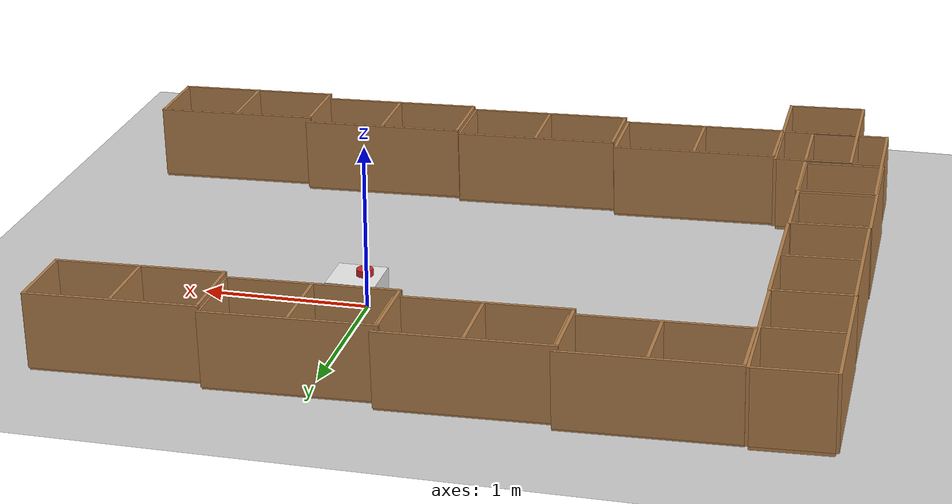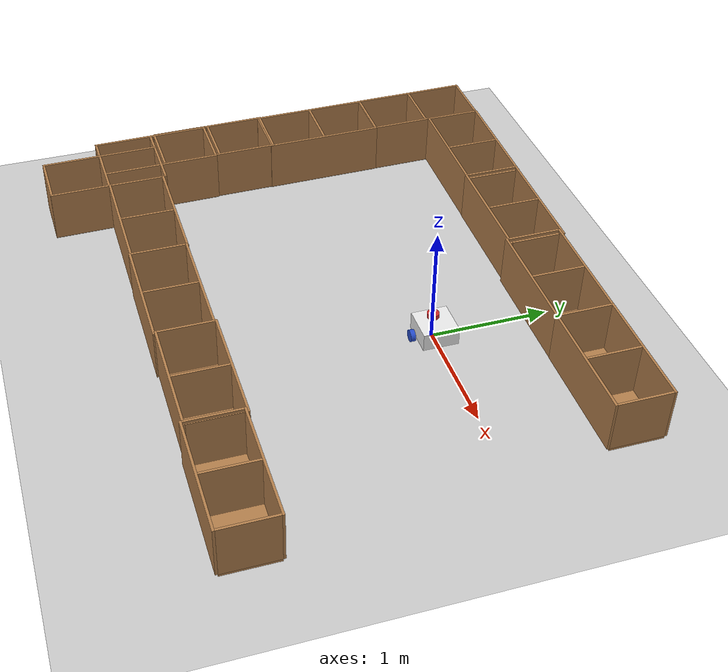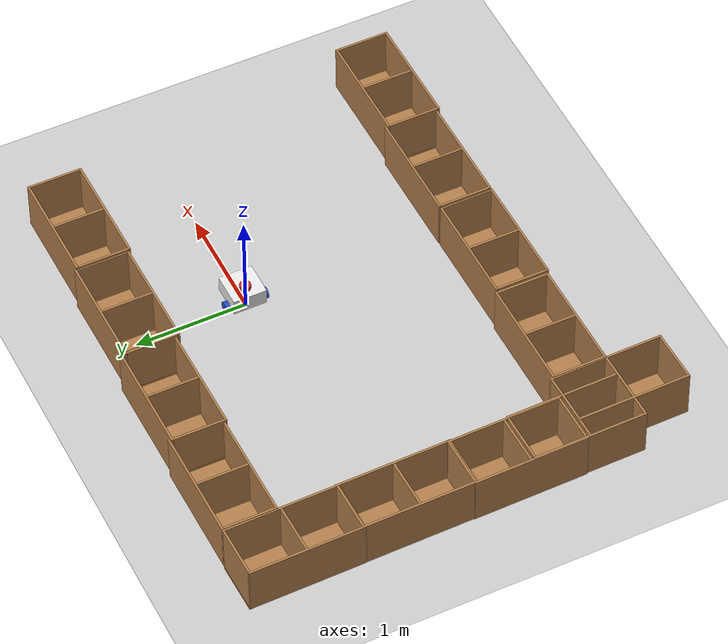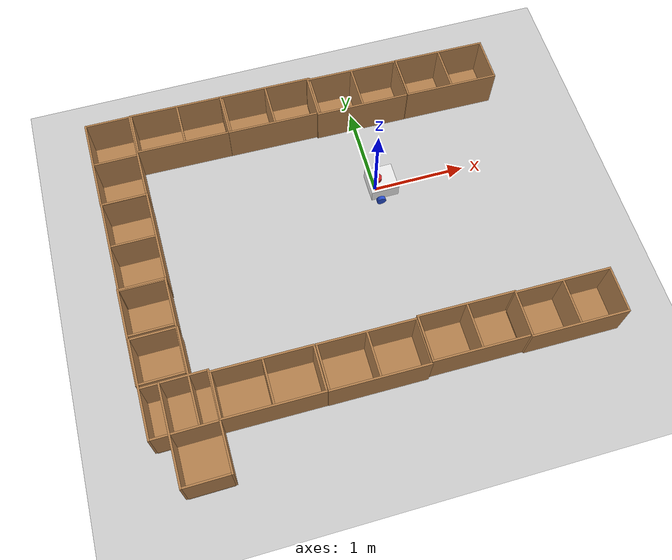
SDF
<sdf version="1.7">
 <world name="default">
  <model name="ground_plane">
   <static>1</static>
   <link name="link">
    <collision name="collision">
     <geometry><plane><normal>0 0 1</normal><size>100 100</size></plane></geometry>
     <surface><friction><ode><mu>100</mu><mu2>50</mu2></ode></friction></surface>
    </collision>
    <visual name="visual">
     <cast_shadows>0</cast_shadows>
     <geometry><plane><normal>0 0 1</normal><size>100 100</size></plane></geometry>
     <material>
      <script><uri>file://media/materials/scripts/gazebo.material</uri><name>Gazebo/Grey</name></script>
     </material>
    </visual>
   </link>
  </model>
  <model name="cabinet_2">
   <static>1</static>
   <link name="cabinet_bottom_plate">
    <inertial>
     <pose>0 0 -1 0 -0 0</pose>
     <inertia><ixx>2.05</ixx><ixy>0</ixy><ixz>0</ixz><iyy>2.05</iyy><iyz>0</iyz><izz>2.05</izz></inertia>
     <mass>25</mass>
    </inertial>
    <collision name="cabinet_bottom_plate_geom">
     <pose>0 0 0.01 0 -0 0</pose>
     <geometry><box><size>0.45 0.45 0.02</size></box></geometry>
    </collision>
    <visual name="cabinet_bottom_plate_geom_visual">
     <pose>0 0 0.01 0 -0 0</pose>
     <geometry><box><size>0.45 0.45 0.02</size></box></geometry>
     <material>
      <script><uri>file://media/materials/scripts/gazebo.material</uri><name>Gazebo/Wood</name></script>
     </material>
    </visual>
    <collision name="cabinet_bottom_plate_geom_cabinet_back_plate">
     <pose>0.235 0 0.51 0 -0 0</pose>
     <geometry><box><size>0.02 0.45 1.02</size></box></geometry>
    </collision>
    <visual name="cabinet_bottom_plate_geom_cabinet_back_plate_visual">
     <pose>0.235 0 0.51 0 -0 0</pose>
     <geometry><box><size>0.02 0.45 1.02</size></box></geometry>
     <material>
      <script><uri>file://media/materials/scripts/gazebo.material</uri><name>Gazebo/Wood</name></script>
     </material>
    </visual>
    <collision name="cabinet_bottom_plate_geom_cabinet_left_plate">
     <pose>0 0.235 0.51 0 -0 0</pose>
     <geometry><box><size>0.45 0.02 1.02</size></box></geometry>
    </collision>
    <visual name="cabinet_bottom_plate_geom_cabinet_left_plate_visual">
     <pose>0 0.235 0.51 0 -0 0</pose>
     <geometry><box><size>0.45 0.02 1.02</size></box></geometry>
     <material>
      <script><uri>file://media/materials/scripts/gazebo.material</uri><name>Gazebo/Wood</name></script>
     </material>
    </visual>
    <collision name="cabinet_bottom_plate_geom_cabinet_middle_plate">
     <pose>0 0 0.51 0 -0 0</pose>
     <geometry><box><size>0.45 0.45 0.02</size></box></geometry>
    </collision>
    <visual name="cabinet_bottom_plate_geom_cabinet_middle_plate_visual">
     <pose>0 0 0.51 0 -0 0</pose>
     <geometry><box><size>0.45 0.45 0.02</size></box></geometry>
     <material>
      <script><uri>file://media/materials/scripts/gazebo.material</uri><name>Gazebo/Wood</name></script>
     </material>
    </visual>
    <collision name="cabinet_bottom_plate_geom_cabinet_right_plate">
     <pose>0 -0.235 0.51 0 -0 0</pose>
     <geometry><box><size>0.45 0.02 1.02</size></box></geometry>
    </collision>
    <visual name="cabinet_bottom_plate_geom_cabinet_right_plate_visual">
     <pose>0 -0.235 0.51 0 -0 0</pose>
     <geometry><box><size>0.45 0.02 1.02</size></box></geometry>
     <material>
      <script><uri>file://media/materials/scripts/gazebo.material</uri><name>Gazebo/Wood</name></script>
     </material>
    </visual>
    <collision name="cabinet_bottom_plate_geom_cabinet_top_plate">
     <pose>0 0 1.01 0 -0 0</pose>
     <geometry><box><size>0.45 0.45 0.02</size></box></geometry>
    </collision>
    <visual name="cabinet_bottom_plate_geom_cabinet_top_plate_visual">
     <pose>0 0 1.01 0 -0 0</pose>
     <geometry><box><size>0.45 0.45 0.02</size></box></geometry>
     <material>
      <script><uri>file://media/materials/scripts/gazebo.material</uri><name>Gazebo/Wood</name></script>
     </material>
    </visual>
   </link>
   <pose>-0.435467 1.028 0.270844 3.14159 1.54735 3.14159</pose>
  </model>
  <model name="my_bot">
   <link name="base_link">
    <inertial>
     <pose>0.055714 0 0.078571 0 -0 0</pose>
     <mass>0.7</mass>
     <inertia>
      <ixx>0.0064169</ixx>
      <ixy>0</ixy>
      <ixz>0.00118929</ixz>
      <iyy>0.00745405</iyy>
      <iyz>0</iyz>
      <izz>0.00876214</izz>
     </inertia>
    </inertial>
    <collision name="base_link_fixed_joint_lump__chassis_collision">
     <pose>0.05 0 0.075 0 -0 0</pose>
     <geometry><box><size>0.3 0.3 0.15</size></box></geometry>
    </collision>
    <collision name="base_link_fixed_joint_lump__caster_wheel_collision_1">
     <pose>0.14 0 0 0 -0 0</pose>
     <geometry><sphere><radius>0.05</radius></sphere></geometry>
     <surface><friction><ode><mu>0.001</mu><mu2>0.001</mu2></ode></friction></surface>
    </collision>
    <collision name="base_link_fixed_joint_lump__laser_frame_collision_2">
     <pose>0 0 0.175 0 -0 0</pose>
     <geometry><cylinder><length>0.04</length><radius>0.05</radius></cylinder></geometry>
    </collision>
    <visual name="base_link_fixed_joint_lump__chassis_visual">
     <pose>0.05 0 0.075 0 -0 0</pose>
     <geometry><box><size>0.3 0.3 0.15</size></box></geometry>
     <material>
      <script><name>Gazebo/White</name><uri>file://media/materials/scripts/gazebo.material</uri></script>
     </material>
    </visual>
    <visual name="base_link_fixed_joint_lump__caster_wheel_visual_1">
     <pose>0.14 0 0 0 -0 0</pose>
     <geometry><sphere><radius>0.05</radius></sphere></geometry>
     <material>
      <script><name>Gazebo/Black</name><uri>file://media/materials/scripts/gazebo.material</uri></script>
     </material>
    </visual>
    <visual name="base_link_fixed_joint_lump__laser_frame_visual_2">
     <pose>0 0 0.175 0 -0 0</pose>
     <geometry><cylinder><length>0.04</length><radius>0.05</radius></cylinder></geometry>
     <material>
      <script><name>Gazebo/Red</name><uri>file://media/materials/scripts/gazebo.material</uri></script>
     </material>
    </visual>
    <sensor name="laser" type="ray">
     <visualize>1</visualize>
     <update_rate>10</update_rate>
     <ray>
      <scan>
       <horizontal>
        <samples>360</samples>
        <min_angle>-3.14</min_angle>
        <max_angle>3.14</max_angle>
        <resolution>1</resolution>
       </horizontal>
       <vertical><samples>1</samples><min_angle>0</min_angle><max_angle>0</max_angle></vertical>
      </scan>
      <range><min>0.3</min><max>12</max></range>
     </ray>
     <plugin name="laser_controller" filename="libgazebo_ros_ray_sensor.so">
      <ros><argument>~/out:=scan</argument></ros>
      <output_type>sensor_msgs/LaserScan</output_type>
      <frame_name>laser_frame</frame_name>
     </plugin>
     <pose>0 0 0.175 0 -0 0</pose>
    </sensor>
   </link>
   <joint name="left_wheel_joint" type="revolute">
    <pose relative_to="base_link">0 0.175 0 -1.5708 0 0</pose>
    <parent>base_link</parent>
    <child>left_wheel</child>
    <axis>
     <xyz>0 0 1</xyz>
     <limit><lower>-1e+16</lower><upper>1e+16</upper></limit>
     <dynamics><spring_reference>0</spring_reference><spring_stiffness>0</spring_stiffness></dynamics>
    </axis>
   </joint>
   <link name="left_wheel">
    <pose relative_to="left_wheel_joint">0 0 0 0 -0 0</pose>
    <inertial>
     <mass>0.1</mass>
     <inertia>
      <ixx>7.58333e-05</ixx>
      <ixy>0</ixy>
      <ixz>0</ixz>
      <iyy>7.58333e-05</iyy>
      <iyz>0</iyz>
      <izz>0.000125</izz>
     </inertia>
    </inertial>
    <collision name="left_wheel_collision">
     <geometry><cylinder><length>0.04</length><radius>0.05</radius></cylinder></geometry>
    </collision>
    <visual name="left_wheel_visual">
     <geometry><cylinder><length>0.04</length><radius>0.05</radius></cylinder></geometry>
     <material>
      <script><name>Gazebo/Blue</name><uri>file://media/materials/scripts/gazebo.material</uri></script>
     </material>
    </visual>
   </link>
   <joint name="right_wheel_joint" type="revolute">
    <pose relative_to="base_link">0 -0.175 0 1.5708 -0 0</pose>
    <parent>base_link</parent>
    <child>right_wheel</child>
    <axis>
     <xyz>0 0 -1</xyz>
     <limit><lower>-1e+16</lower><upper>1e+16</upper></limit>
     <dynamics><spring_reference>0</spring_reference><spring_stiffness>0</spring_stiffness></dynamics>
    </axis>
   </joint>
   <link name="right_wheel">
    <pose relative_to="right_wheel_joint">0 0 0 0 -0 0</pose>
    <inertial>
     <mass>0.1</mass>
     <inertia>
      <ixx>7.58333e-05</ixx>
      <ixy>0</ixy>
      <ixz>0</ixz>
      <iyy>7.58333e-05</iyy>
      <iyz>0</iyz>
      <izz>0.000125</izz>
     </inertia>
    </inertial>
    <collision name="right_wheel_collision">
     <geometry><cylinder><length>0.04</length><radius>0.05</radius></cylinder></geometry>
    </collision>
    <visual name="right_wheel_visual">
     <geometry><cylinder><length>0.04</length><radius>0.05</radius></cylinder></geometry>
     <material>
      <script><name>Gazebo/Blue</name><uri>file://media/materials/scripts/gazebo.material</uri></script>
     </material>
    </visual>
   </link>
   <static>0</static>
   <plugin name="diff_drive" filename="libgazebo_ros_diff_drive.so">
    <left_joint>left_wheel_joint</left_joint>
    <right_joint>right_wheel_joint</right_joint>
    <wheel_separation>0.35</wheel_separation>
    <wheel_diameter>0.1</wheel_diameter>
    <max_wheel_torque>200</max_wheel_torque>
    <max_wheel_acceleration>10.0</max_wheel_acceleration>
    <odometry_frame>odom</odometry_frame>
    <robot_base_frame>base_link</robot_base_frame>
    <publish_odom>1</publish_odom>
    <publish_odom_tf>1</publish_odom_tf>
    <publish_wheel_tf>1</publish_wheel_tf>
   </plugin>
   <pose>0.010607 6.8e-05 0.05 0 1.2e-05 0.000277</pose>
  </model>
  <model name="cabinet_2_clone">
   <static>1</static>
   <link name="cabinet_bottom_plate">
    <inertial>
     <pose>0 0 -1 0 -0 0</pose>
     <inertia><ixx>2.05</ixx><ixy>0</ixy><ixz>0</ixz><iyy>2.05</iyy><iyz>0</iyz><izz>2.05</izz></inertia>
     <mass>25</mass>
    </inertial>
    <collision name="cabinet_bottom_plate_geom">
     <pose>0 0 0.01 0 -0 0</pose>
     <geometry><box><size>0.45 0.45 0.02</size></box></geometry>
    </collision>
    <visual name="cabinet_bottom_plate_geom_visual">
     <pose>0 0 0.01 0 -0 0</pose>
     <geometry><box><size>0.45 0.45 0.02</size></box></geometry>
     <material>
      <script><uri>file://media/materials/scripts/gazebo.material</uri><name>Gazebo/Wood</name></script>
     </material>
    </visual>
    <collision name="cabinet_bottom_plate_geom_cabinet_back_plate">
     <pose>0.235 0 0.51 0 -0 0</pose>
     <geometry><box><size>0.02 0.45 1.02</size></box></geometry>
    </collision>
    <visual name="cabinet_bottom_plate_geom_cabinet_back_plate_visual">
     <pose>0.235 0 0.51 0 -0 0</pose>
     <geometry><box><size>0.02 0.45 1.02</size></box></geometry>
     <material>
      <script><uri>file://media/materials/scripts/gazebo.material</uri><name>Gazebo/Wood</name></script>
     </material>
    </visual>
    <collision name="cabinet_bottom_plate_geom_cabinet_left_plate">
     <pose>0 0.235 0.51 0 -0 0</pose>
     <geometry><box><size>0.45 0.02 1.02</size></box></geometry>
    </collision>
    <visual name="cabinet_bottom_plate_geom_cabinet_left_plate_visual">
     <pose>0 0.235 0.51 0 -0 0</pose>
     <geometry><box><size>0.45 0.02 1.02</size></box></geometry>
     <material>
      <script><uri>file://media/materials/scripts/gazebo.material</uri><name>Gazebo/Wood</name></script>
     </material>
    </visual>
    <collision name="cabinet_bottom_plate_geom_cabinet_middle_plate">
     <pose>0 0 0.51 0 -0 0</pose>
     <geometry><box><size>0.45 0.45 0.02</size></box></geometry>
    </collision>
    <visual name="cabinet_bottom_plate_geom_cabinet_middle_plate_visual">
     <pose>0 0 0.51 0 -0 0</pose>
     <geometry><box><size>0.45 0.45 0.02</size></box></geometry>
     <material>
      <script><uri>file://media/materials/scripts/gazebo.material</uri><name>Gazebo/Wood</name></script>
     </material>
    </visual>
    <collision name="cabinet_bottom_plate_geom_cabinet_right_plate">
     <pose>0 -0.235 0.51 0 -0 0</pose>
     <geometry><box><size>0.45 0.02 1.02</size></box></geometry>
    </collision>
    <visual name="cabinet_bottom_plate_geom_cabinet_right_plate_visual">
     <pose>0 -0.235 0.51 0 -0 0</pose>
     <geometry><box><size>0.45 0.02 1.02</size></box></geometry>
     <material>
      <script><uri>file://media/materials/scripts/gazebo.material</uri><name>Gazebo/Wood</name></script>
     </material>
    </visual>
    <collision name="cabinet_bottom_plate_geom_cabinet_top_plate">
     <pose>0 0 1.01 0 -0 0</pose>
     <geometry><box><size>0.45 0.45 0.02</size></box></geometry>
    </collision>
    <visual name="cabinet_bottom_plate_geom_cabinet_top_plate_visual">
     <pose>0 0 1.01 0 -0 0</pose>
     <geometry><box><size>0.45 0.45 0.02</size></box></geometry>
     <material>
      <script><uri>file://media/materials/scripts/gazebo.material</uri><name>Gazebo/Wood</name></script>
     </material>
    </visual>
   </link>
   <pose>0.575957 1.01279 0.270844 3.14159 1.54735 3.14159</pose>
  </model>
  <model name="cabinet_2_clone_4">
   <static>1</static>
   <link name="cabinet_bottom_plate">
    <inertial>
     <pose>0 0 -1 0 -0 0</pose>
     <inertia><ixx>2.05</ixx><ixy>0</ixy><ixz>0</ixz><iyy>2.05</iyy><iyz>0</iyz><izz>2.05</izz></inertia>
     <mass>25</mass>
    </inertial>
    <collision name="cabinet_bottom_plate_geom">
     <pose>0 0 0.01 0 -0 0</pose>
     <geometry><box><size>0.45 0.45 0.02</size></box></geometry>
    </collision>
    <visual name="cabinet_bottom_plate_geom_visual">
     <pose>0 0 0.01 0 -0 0</pose>
     <geometry><box><size>0.45 0.45 0.02</size></box></geometry>
     <material>
      <script><uri>file://media/materials/scripts/gazebo.material</uri><name>Gazebo/Wood</name></script>
     </material>
    </visual>
    <collision name="cabinet_bottom_plate_geom_cabinet_back_plate">
     <pose>0.235 0 0.51 0 -0 0</pose>
     <geometry><box><size>0.02 0.45 1.02</size></box></geometry>
    </collision>
    <visual name="cabinet_bottom_plate_geom_cabinet_back_plate_visual">
     <pose>0.235 0 0.51 0 -0 0</pose>
     <geometry><box><size>0.02 0.45 1.02</size></box></geometry>
     <material>
      <script><uri>file://media/materials/scripts/gazebo.material</uri><name>Gazebo/Wood</name></script>
     </material>
    </visual>
    <collision name="cabinet_bottom_plate_geom_cabinet_left_plate">
     <pose>0 0.235 0.51 0 -0 0</pose>
     <geometry><box><size>0.45 0.02 1.02</size></box></geometry>
    </collision>
    <visual name="cabinet_bottom_plate_geom_cabinet_left_plate_visual">
     <pose>0 0.235 0.51 0 -0 0</pose>
     <geometry><box><size>0.45 0.02 1.02</size></box></geometry>
     <material>
      <script><uri>file://media/materials/scripts/gazebo.material</uri><name>Gazebo/Wood</name></script>
     </material>
    </visual>
    <collision name="cabinet_bottom_plate_geom_cabinet_middle_plate">
     <pose>0 0 0.51 0 -0 0</pose>
     <geometry><box><size>0.45 0.45 0.02</size></box></geometry>
    </collision>
    <visual name="cabinet_bottom_plate_geom_cabinet_middle_plate_visual">
     <pose>0 0 0.51 0 -0 0</pose>
     <geometry><box><size>0.45 0.45 0.02</size></box></geometry>
     <material>
      <script><uri>file://media/materials/scripts/gazebo.material</uri><name>Gazebo/Wood</name></script>
     </material>
    </visual>
    <collision name="cabinet_bottom_plate_geom_cabinet_right_plate">
     <pose>0 -0.235 0.51 0 -0 0</pose>
     <geometry><box><size>0.45 0.02 1.02</size></box></geometry>
    </collision>
    <visual name="cabinet_bottom_plate_geom_cabinet_right_plate_visual">
     <pose>0 -0.235 0.51 0 -0 0</pose>
     <geometry><box><size>0.45 0.02 1.02</size></box></geometry>
     <material>
      <script><uri>file://media/materials/scripts/gazebo.material</uri><name>Gazebo/Wood</name></script>
     </material>
    </visual>
    <collision name="cabinet_bottom_plate_geom_cabinet_top_plate">
     <pose>0 0 1.01 0 -0 0</pose>
     <geometry><box><size>0.45 0.45 0.02</size></box></geometry>
    </collision>
    <visual name="cabinet_bottom_plate_geom_cabinet_top_plate_visual">
     <pose>0 0 1.01 0 -0 0</pose>
     <geometry><box><size>0.45 0.45 0.02</size></box></geometry>
     <material>
      <script><uri>file://media/materials/scripts/gazebo.material</uri><name>Gazebo/Wood</name></script>
     </material>
    </visual>
   </link>
   <pose>-0.126851 -1.96481 0.270844 3.14159 1.54735 3.14159</pose>
  </model>
  <model name="cabinet_2_clone_5">
   <static>1</static>
   <link name="cabinet_bottom_plate">
    <inertial>
     <pose>0 0 -1 0 -0 0</pose>
     <inertia><ixx>2.05</ixx><ixy>0</ixy><ixz>0</ixz><iyy>2.05</iyy><iyz>0</iyz><izz>2.05</izz></inertia>
     <mass>25</mass>
    </inertial>
    <collision name="cabinet_bottom_plate_geom">
     <pose>0 0 0.01 0 -0 0</pose>
     <geometry><box><size>0.45 0.45 0.02</size></box></geometry>
    </collision>
    <visual name="cabinet_bottom_plate_geom_visual">
     <pose>0 0 0.01 0 -0 0</pose>
     <geometry><box><size>0.45 0.45 0.02</size></box></geometry>
     <material>
      <script><uri>file://media/materials/scripts/gazebo.material</uri><name>Gazebo/Wood</name></script>
     </material>
    </visual>
    <collision name="cabinet_bottom_plate_geom_cabinet_back_plate">
     <pose>0.235 0 0.51 0 -0 0</pose>
     <geometry><box><size>0.02 0.45 1.02</size></box></geometry>
    </collision>
    <visual name="cabinet_bottom_plate_geom_cabinet_back_plate_visual">
     <pose>0.235 0 0.51 0 -0 0</pose>
     <geometry><box><size>0.02 0.45 1.02</size></box></geometry>
     <material>
      <script><uri>file://media/materials/scripts/gazebo.material</uri><name>Gazebo/Wood</name></script>
     </material>
    </visual>
    <collision name="cabinet_bottom_plate_geom_cabinet_left_plate">
     <pose>0 0.235 0.51 0 -0 0</pose>
     <geometry><box><size>0.45 0.02 1.02</size></box></geometry>
    </collision>
    <visual name="cabinet_bottom_plate_geom_cabinet_left_plate_visual">
     <pose>0 0.235 0.51 0 -0 0</pose>
     <geometry><box><size>0.45 0.02 1.02</size></box></geometry>
     <material>
      <script><uri>file://media/materials/scripts/gazebo.material</uri><name>Gazebo/Wood</name></script>
     </material>
    </visual>
    <collision name="cabinet_bottom_plate_geom_cabinet_middle_plate">
     <pose>0 0 0.51 0 -0 0</pose>
     <geometry><box><size>0.45 0.45 0.02</size></box></geometry>
    </collision>
    <visual name="cabinet_bottom_plate_geom_cabinet_middle_plate_visual">
     <pose>0 0 0.51 0 -0 0</pose>
     <geometry><box><size>0.45 0.45 0.02</size></box></geometry>
     <material>
      <script><uri>file://media/materials/scripts/gazebo.material</uri><name>Gazebo/Wood</name></script>
     </material>
    </visual>
    <collision name="cabinet_bottom_plate_geom_cabinet_right_plate">
     <pose>0 -0.235 0.51 0 -0 0</pose>
     <geometry><box><size>0.45 0.02 1.02</size></box></geometry>
    </collision>
    <visual name="cabinet_bottom_plate_geom_cabinet_right_plate_visual">
     <pose>0 -0.235 0.51 0 -0 0</pose>
     <geometry><box><size>0.45 0.02 1.02</size></box></geometry>
     <material>
      <script><uri>file://media/materials/scripts/gazebo.material</uri><name>Gazebo/Wood</name></script>
     </material>
    </visual>
    <collision name="cabinet_bottom_plate_geom_cabinet_top_plate">
     <pose>0 0 1.01 0 -0 0</pose>
     <geometry><box><size>0.45 0.45 0.02</size></box></geometry>
    </collision>
    <visual name="cabinet_bottom_plate_geom_cabinet_top_plate_visual">
     <pose>0 0 1.01 0 -0 0</pose>
     <geometry><box><size>0.45 0.45 0.02</size></box></geometry>
     <material>
      <script><uri>file://media/materials/scripts/gazebo.material</uri><name>Gazebo/Wood</name></script>
     </material>
    </visual>
   </link>
   <pose>0.865379 -1.98489 0.270844 3.14159 1.54735 3.14159</pose>
  </model>
  <model name="cabinet_2_clone_7">
   <static>1</static>
   <link name="cabinet_bottom_plate">
    <inertial>
     <pose>0 0 -1 0 -0 0</pose>
     <inertia><ixx>2.05</ixx><ixy>0</ixy><ixz>0</ixz><iyy>2.05</iyy><iyz>0</iyz><izz>2.05</izz></inertia>
     <mass>25</mass>
    </inertial>
    <collision name="cabinet_bottom_plate_geom">
     <pose>0 0 0.01 0 -0 0</pose>
     <geometry><box><size>0.45 0.45 0.02</size></box></geometry>
    </collision>
    <visual name="cabinet_bottom_plate_geom_visual">
     <pose>0 0 0.01 0 -0 0</pose>
     <geometry><box><size>0.45 0.45 0.02</size></box></geometry>
     <material>
      <script><uri>file://media/materials/scripts/gazebo.material</uri><name>Gazebo/Wood</name></script>
     </material>
    </visual>
    <collision name="cabinet_bottom_plate_geom_cabinet_back_plate">
     <pose>0.235 0 0.51 0 -0 0</pose>
     <geometry><box><size>0.02 0.45 1.02</size></box></geometry>
    </collision>
    <visual name="cabinet_bottom_plate_geom_cabinet_back_plate_visual">
     <pose>0.235 0 0.51 0 -0 0</pose>
     <geometry><box><size>0.02 0.45 1.02</size></box></geometry>
     <material>
      <script><uri>file://media/materials/scripts/gazebo.material</uri><name>Gazebo/Wood</name></script>
     </material>
    </visual>
    <collision name="cabinet_bottom_plate_geom_cabinet_left_plate">
     <pose>0 0.235 0.51 0 -0 0</pose>
     <geometry><box><size>0.45 0.02 1.02</size></box></geometry>
    </collision>
    <visual name="cabinet_bottom_plate_geom_cabinet_left_plate_visual">
     <pose>0 0.235 0.51 0 -0 0</pose>
     <geometry><box><size>0.45 0.02 1.02</size></box></geometry>
     <material>
      <script><uri>file://media/materials/scripts/gazebo.material</uri><name>Gazebo/Wood</name></script>
     </material>
    </visual>
    <collision name="cabinet_bottom_plate_geom_cabinet_middle_plate">
     <pose>0 0 0.51 0 -0 0</pose>
     <geometry><box><size>0.45 0.45 0.02</size></box></geometry>
    </collision>
    <visual name="cabinet_bottom_plate_geom_cabinet_middle_plate_visual">
     <pose>0 0 0.51 0 -0 0</pose>
     <geometry><box><size>0.45 0.45 0.02</size></box></geometry>
     <material>
      <script><uri>file://media/materials/scripts/gazebo.material</uri><name>Gazebo/Wood</name></script>
     </material>
    </visual>
    <collision name="cabinet_bottom_plate_geom_cabinet_right_plate">
     <pose>0 -0.235 0.51 0 -0 0</pose>
     <geometry><box><size>0.45 0.02 1.02</size></box></geometry>
    </collision>
    <visual name="cabinet_bottom_plate_geom_cabinet_right_plate_visual">
     <pose>0 -0.235 0.51 0 -0 0</pose>
     <geometry><box><size>0.45 0.02 1.02</size></box></geometry>
     <material>
      <script><uri>file://media/materials/scripts/gazebo.material</uri><name>Gazebo/Wood</name></script>
     </material>
    </visual>
    <collision name="cabinet_bottom_plate_geom_cabinet_top_plate">
     <pose>0 0 1.01 0 -0 0</pose>
     <geometry><box><size>0.45 0.45 0.02</size></box></geometry>
    </collision>
    <visual name="cabinet_bottom_plate_geom_cabinet_top_plate_visual">
     <pose>0 0 1.01 0 -0 0</pose>
     <geometry><box><size>0.45 0.45 0.02</size></box></geometry>
     <material>
      <script><uri>file://media/materials/scripts/gazebo.material</uri><name>Gazebo/Wood</name></script>
     </material>
    </visual>
   </link>
   <pose>-1.13967 -1.97714 0.270844 3.14159 1.54735 3.14159</pose>
  </model>
  <model name="cabinet_2_clone_8">
   <static>1</static>
   <link name="cabinet_bottom_plate">
    <inertial>
     <pose>0 0 -1 0 -0 0</pose>
     <inertia><ixx>2.05</ixx><ixy>0</ixy><ixz>0</ixz><iyy>2.05</iyy><iyz>0</iyz><izz>2.05</izz></inertia>
     <mass>25</mass>
    </inertial>
    <collision name="cabinet_bottom_plate_geom">
     <pose>0 0 0.01 0 -0 0</pose>
     <geometry><box><size>0.45 0.45 0.02</size></box></geometry>
    </collision>
    <visual name="cabinet_bottom_plate_geom_visual">
     <pose>0 0 0.01 0 -0 0</pose>
     <geometry><box><size>0.45 0.45 0.02</size></box></geometry>
     <material>
      <script><uri>file://media/materials/scripts/gazebo.material</uri><name>Gazebo/Wood</name></script>
     </material>
    </visual>
    <collision name="cabinet_bottom_plate_geom_cabinet_back_plate">
     <pose>0.235 0 0.51 0 -0 0</pose>
     <geometry><box><size>0.02 0.45 1.02</size></box></geometry>
    </collision>
    <visual name="cabinet_bottom_plate_geom_cabinet_back_plate_visual">
     <pose>0.235 0 0.51 0 -0 0</pose>
     <geometry><box><size>0.02 0.45 1.02</size></box></geometry>
     <material>
      <script><uri>file://media/materials/scripts/gazebo.material</uri><name>Gazebo/Wood</name></script>
     </material>
    </visual>
    <collision name="cabinet_bottom_plate_geom_cabinet_left_plate">
     <pose>0 0.235 0.51 0 -0 0</pose>
     <geometry><box><size>0.45 0.02 1.02</size></box></geometry>
    </collision>
    <visual name="cabinet_bottom_plate_geom_cabinet_left_plate_visual">
     <pose>0 0.235 0.51 0 -0 0</pose>
     <geometry><box><size>0.45 0.02 1.02</size></box></geometry>
     <material>
      <script><uri>file://media/materials/scripts/gazebo.material</uri><name>Gazebo/Wood</name></script>
     </material>
    </visual>
    <collision name="cabinet_bottom_plate_geom_cabinet_middle_plate">
     <pose>0 0 0.51 0 -0 0</pose>
     <geometry><box><size>0.45 0.45 0.02</size></box></geometry>
    </collision>
    <visual name="cabinet_bottom_plate_geom_cabinet_middle_plate_visual">
     <pose>0 0 0.51 0 -0 0</pose>
     <geometry><box><size>0.45 0.45 0.02</size></box></geometry>
     <material>
      <script><uri>file://media/materials/scripts/gazebo.material</uri><name>Gazebo/Wood</name></script>
     </material>
    </visual>
    <collision name="cabinet_bottom_plate_geom_cabinet_right_plate">
     <pose>0 -0.235 0.51 0 -0 0</pose>
     <geometry><box><size>0.45 0.02 1.02</size></box></geometry>
    </collision>
    <visual name="cabinet_bottom_plate_geom_cabinet_right_plate_visual">
     <pose>0 -0.235 0.51 0 -0 0</pose>
     <geometry><box><size>0.45 0.02 1.02</size></box></geometry>
     <material>
      <script><uri>file://media/materials/scripts/gazebo.material</uri><name>Gazebo/Wood</name></script>
     </material>
    </visual>
    <collision name="cabinet_bottom_plate_geom_cabinet_top_plate">
     <pose>0 0 1.01 0 -0 0</pose>
     <geometry><box><size>0.45 0.45 0.02</size></box></geometry>
    </collision>
    <visual name="cabinet_bottom_plate_geom_cabinet_top_plate_visual">
     <pose>0 0 1.01 0 -0 0</pose>
     <geometry><box><size>0.45 0.45 0.02</size></box></geometry>
     <material>
      <script><uri>file://media/materials/scripts/gazebo.material</uri><name>Gazebo/Wood</name></script>
     </material>
    </visual>
   </link>
   <pose>-2.16225 -1.96678 0.270844 3.14159 1.54735 3.14159</pose>
  </model>
  <model name="cabinet_2_clone_13">
   <static>1</static>
   <link name="cabinet_bottom_plate">
    <inertial>
     <pose>0 0 -1 0 -0 0</pose>
     <inertia><ixx>2.05</ixx><ixy>0</ixy><ixz>0</ixz><iyy>2.05</iyy><iyz>0</iyz><izz>2.05</izz></inertia>
     <mass>25</mass>
    </inertial>
    <collision name="cabinet_bottom_plate_geom">
     <pose>0 0 0.01 0 -0 0</pose>
     <geometry><box><size>0.45 0.45 0.02</size></box></geometry>
    </collision>
    <visual name="cabinet_bottom_plate_geom_visual">
     <pose>0 0 0.01 0 -0 0</pose>
     <geometry><box><size>0.45 0.45 0.02</size></box></geometry>
     <material>
      <script><uri>file://media/materials/scripts/gazebo.material</uri><name>Gazebo/Wood</name></script>
     </material>
    </visual>
    <collision name="cabinet_bottom_plate_geom_cabinet_back_plate">
     <pose>0.235 0 0.51 0 -0 0</pose>
     <geometry><box><size>0.02 0.45 1.02</size></box></geometry>
    </collision>
    <visual name="cabinet_bottom_plate_geom_cabinet_back_plate_visual">
     <pose>0.235 0 0.51 0 -0 0</pose>
     <geometry><box><size>0.02 0.45 1.02</size></box></geometry>
     <material>
      <script><uri>file://media/materials/scripts/gazebo.material</uri><name>Gazebo/Wood</name></script>
     </material>
    </visual>
    <collision name="cabinet_bottom_plate_geom_cabinet_left_plate">
     <pose>0 0.235 0.51 0 -0 0</pose>
     <geometry><box><size>0.45 0.02 1.02</size></box></geometry>
    </collision>
    <visual name="cabinet_bottom_plate_geom_cabinet_left_plate_visual">
     <pose>0 0.235 0.51 0 -0 0</pose>
     <geometry><box><size>0.45 0.02 1.02</size></box></geometry>
     <material>
      <script><uri>file://media/materials/scripts/gazebo.material</uri><name>Gazebo/Wood</name></script>
     </material>
    </visual>
    <collision name="cabinet_bottom_plate_geom_cabinet_middle_plate">
     <pose>0 0 0.51 0 -0 0</pose>
     <geometry><box><size>0.45 0.45 0.02</size></box></geometry>
    </collision>
    <visual name="cabinet_bottom_plate_geom_cabinet_middle_plate_visual">
     <pose>0 0 0.51 0 -0 0</pose>
     <geometry><box><size>0.45 0.45 0.02</size></box></geometry>
     <material>
      <script><uri>file://media/materials/scripts/gazebo.material</uri><name>Gazebo/Wood</name></script>
     </material>
    </visual>
    <collision name="cabinet_bottom_plate_geom_cabinet_right_plate">
     <pose>0 -0.235 0.51 0 -0 0</pose>
     <geometry><box><size>0.45 0.02 1.02</size></box></geometry>
    </collision>
    <visual name="cabinet_bottom_plate_geom_cabinet_right_plate_visual">
     <pose>0 -0.235 0.51 0 -0 0</pose>
     <geometry><box><size>0.45 0.02 1.02</size></box></geometry>
     <material>
      <script><uri>file://media/materials/scripts/gazebo.material</uri><name>Gazebo/Wood</name></script>
     </material>
    </visual>
    <collision name="cabinet_bottom_plate_geom_cabinet_top_plate">
     <pose>0 0 1.01 0 -0 0</pose>
     <geometry><box><size>0.45 0.45 0.02</size></box></geometry>
    </collision>
    <visual name="cabinet_bottom_plate_geom_cabinet_top_plate_visual">
     <pose>0 0 1.01 0 -0 0</pose>
     <geometry><box><size>0.45 0.45 0.02</size></box></geometry>
     <material>
      <script><uri>file://media/materials/scripts/gazebo.material</uri><name>Gazebo/Wood</name></script>
     </material>
    </visual>
   </link>
   <pose>-1.41109 1.05991 0.270844 3.14159 1.54735 3.14159</pose>
  </model>
  <model name="cabinet_2_clone_14">
   <static>1</static>
   <link name="cabinet_bottom_plate">
    <inertial>
     <pose>0 0 -1 0 -0 0</pose>
     <inertia><ixx>2.05</ixx><ixy>0</ixy><ixz>0</ixz><iyy>2.05</iyy><iyz>0</iyz><izz>2.05</izz></inertia>
     <mass>25</mass>
    </inertial>
    <collision name="cabinet_bottom_plate_geom">
     <pose>0 0 0.01 0 -0 0</pose>
     <geometry><box><size>0.45 0.45 0.02</size></box></geometry>
    </collision>
    <visual name="cabinet_bottom_plate_geom_visual">
     <pose>0 0 0.01 0 -0 0</pose>
     <geometry><box><size>0.45 0.45 0.02</size></box></geometry>
     <material>
      <script><uri>file://media/materials/scripts/gazebo.material</uri><name>Gazebo/Wood</name></script>
     </material>
    </visual>
    <collision name="cabinet_bottom_plate_geom_cabinet_back_plate">
     <pose>0.235 0 0.51 0 -0 0</pose>
     <geometry><box><size>0.02 0.45 1.02</size></box></geometry>
    </collision>
    <visual name="cabinet_bottom_plate_geom_cabinet_back_plate_visual">
     <pose>0.235 0 0.51 0 -0 0</pose>
     <geometry><box><size>0.02 0.45 1.02</size></box></geometry>
     <material>
      <script><uri>file://media/materials/scripts/gazebo.material</uri><name>Gazebo/Wood</name></script>
     </material>
    </visual>
    <collision name="cabinet_bottom_plate_geom_cabinet_left_plate">
     <pose>0 0.235 0.51 0 -0 0</pose>
     <geometry><box><size>0.45 0.02 1.02</size></box></geometry>
    </collision>
    <visual name="cabinet_bottom_plate_geom_cabinet_left_plate_visual">
     <pose>0 0.235 0.51 0 -0 0</pose>
     <geometry><box><size>0.45 0.02 1.02</size></box></geometry>
     <material>
      <script><uri>file://media/materials/scripts/gazebo.material</uri><name>Gazebo/Wood</name></script>
     </material>
    </visual>
    <collision name="cabinet_bottom_plate_geom_cabinet_middle_plate">
     <pose>0 0 0.51 0 -0 0</pose>
     <geometry><box><size>0.45 0.45 0.02</size></box></geometry>
    </collision>
    <visual name="cabinet_bottom_plate_geom_cabinet_middle_plate_visual">
     <pose>0 0 0.51 0 -0 0</pose>
     <geometry><box><size>0.45 0.45 0.02</size></box></geometry>
     <material>
      <script><uri>file://media/materials/scripts/gazebo.material</uri><name>Gazebo/Wood</name></script>
     </material>
    </visual>
    <collision name="cabinet_bottom_plate_geom_cabinet_right_plate">
     <pose>0 -0.235 0.51 0 -0 0</pose>
     <geometry><box><size>0.45 0.02 1.02</size></box></geometry>
    </collision>
    <visual name="cabinet_bottom_plate_geom_cabinet_right_plate_visual">
     <pose>0 -0.235 0.51 0 -0 0</pose>
     <geometry><box><size>0.45 0.02 1.02</size></box></geometry>
     <material>
      <script><uri>file://media/materials/scripts/gazebo.material</uri><name>Gazebo/Wood</name></script>
     </material>
    </visual>
    <collision name="cabinet_bottom_plate_geom_cabinet_top_plate">
     <pose>0 0 1.01 0 -0 0</pose>
     <geometry><box><size>0.45 0.45 0.02</size></box></geometry>
    </collision>
    <visual name="cabinet_bottom_plate_geom_cabinet_top_plate_visual">
     <pose>0 0 1.01 0 -0 0</pose>
     <geometry><box><size>0.45 0.45 0.02</size></box></geometry>
     <material>
      <script><uri>file://media/materials/scripts/gazebo.material</uri><name>Gazebo/Wood</name></script>
     </material>
    </visual>
   </link>
   <pose>-2.39146 1.07672 0.270844 3.14159 1.54735 3.14159</pose>
  </model>
  <model name="cabinet_2_clone_15_clone">
   <static>1</static>
   <link name="cabinet_bottom_plate">
    <inertial>
     <pose>0 0 -1 0 -0 0</pose>
     <inertia><ixx>2.05</ixx><ixy>0</ixy><ixz>0</ixz><iyy>2.05</iyy><iyz>0</iyz><izz>2.05</izz></inertia>
     <mass>25</mass>
    </inertial>
    <collision name="cabinet_bottom_plate_geom">
     <pose>0 0 0.01 0 -0 0</pose>
     <geometry><box><size>0.45 0.45 0.02</size></box></geometry>
    </collision>
    <visual name="cabinet_bottom_plate_geom_visual">
     <pose>0 0 0.01 0 -0 0</pose>
     <geometry><box><size>0.45 0.45 0.02</size></box></geometry>
     <material>
      <script><uri>file://media/materials/scripts/gazebo.material</uri><name>Gazebo/Wood</name></script>
     </material>
    </visual>
    <collision name="cabinet_bottom_plate_geom_cabinet_back_plate">
     <pose>0.235 0 0.51 0 -0 0</pose>
     <geometry><box><size>0.02 0.45 1.02</size></box></geometry>
    </collision>
    <visual name="cabinet_bottom_plate_geom_cabinet_back_plate_visual">
     <pose>0.235 0 0.51 0 -0 0</pose>
     <geometry><box><size>0.02 0.45 1.02</size></box></geometry>
     <material>
      <script><uri>file://media/materials/scripts/gazebo.material</uri><name>Gazebo/Wood</name></script>
     </material>
    </visual>
    <collision name="cabinet_bottom_plate_geom_cabinet_left_plate">
     <pose>0 0.235 0.51 0 -0 0</pose>
     <geometry><box><size>0.45 0.02 1.02</size></box></geometry>
    </collision>
    <visual name="cabinet_bottom_plate_geom_cabinet_left_plate_visual">
     <pose>0 0.235 0.51 0 -0 0</pose>
     <geometry><box><size>0.45 0.02 1.02</size></box></geometry>
     <material>
      <script><uri>file://media/materials/scripts/gazebo.material</uri><name>Gazebo/Wood</name></script>
     </material>
    </visual>
    <collision name="cabinet_bottom_plate_geom_cabinet_middle_plate">
     <pose>0 0 0.51 0 -0 0</pose>
     <geometry><box><size>0.45 0.45 0.02</size></box></geometry>
    </collision>
    <visual name="cabinet_bottom_plate_geom_cabinet_middle_plate_visual">
     <pose>0 0 0.51 0 -0 0</pose>
     <geometry><box><size>0.45 0.45 0.02</size></box></geometry>
     <material>
      <script><uri>file://media/materials/scripts/gazebo.material</uri><name>Gazebo/Wood</name></script>
     </material>
    </visual>
    <collision name="cabinet_bottom_plate_geom_cabinet_right_plate">
     <pose>0 -0.235 0.51 0 -0 0</pose>
     <geometry><box><size>0.45 0.02 1.02</size></box></geometry>
    </collision>
    <visual name="cabinet_bottom_plate_geom_cabinet_right_plate_visual">
     <pose>0 -0.235 0.51 0 -0 0</pose>
     <geometry><box><size>0.45 0.02 1.02</size></box></geometry>
     <material>
      <script><uri>file://media/materials/scripts/gazebo.material</uri><name>Gazebo/Wood</name></script>
     </material>
    </visual>
    <collision name="cabinet_bottom_plate_geom_cabinet_top_plate">
     <pose>0 0 1.01 0 -0 0</pose>
     <geometry><box><size>0.45 0.45 0.02</size></box></geometry>
    </collision>
    <visual name="cabinet_bottom_plate_geom_cabinet_top_plate_visual">
     <pose>0 0 1.01 0 -0 0</pose>
     <geometry><box><size>0.45 0.45 0.02</size></box></geometry>
     <material>
      <script><uri>file://media/materials/scripts/gazebo.material</uri><name>Gazebo/Wood</name></script>
     </material>
    </visual>
   </link>
   <pose>-2.62233 0.297101 0.270633 1.55828 1.54735 3.14159</pose>
  </model>
  <model name="cabinet_2_clone_15_clone_0">
   <static>1</static>
   <link name="cabinet_bottom_plate">
    <inertial>
     <pose>0 0 -1 0 -0 0</pose>
     <inertia><ixx>2.05</ixx><ixy>0</ixy><ixz>0</ixz><iyy>2.05</iyy><iyz>0</iyz><izz>2.05</izz></inertia>
     <mass>25</mass>
    </inertial>
    <collision name="cabinet_bottom_plate_geom">
     <pose>0 0 0.01 0 -0 0</pose>
     <geometry><box><size>0.45 0.45 0.02</size></box></geometry>
    </collision>
    <visual name="cabinet_bottom_plate_geom_visual">
     <pose>0 0 0.01 0 -0 0</pose>
     <geometry><box><size>0.45 0.45 0.02</size></box></geometry>
     <material>
      <script><uri>file://media/materials/scripts/gazebo.material</uri><name>Gazebo/Wood</name></script>
     </material>
    </visual>
    <collision name="cabinet_bottom_plate_geom_cabinet_back_plate">
     <pose>0.235 0 0.51 0 -0 0</pose>
     <geometry><box><size>0.02 0.45 1.02</size></box></geometry>
    </collision>
    <visual name="cabinet_bottom_plate_geom_cabinet_back_plate_visual">
     <pose>0.235 0 0.51 0 -0 0</pose>
     <geometry><box><size>0.02 0.45 1.02</size></box></geometry>
     <material>
      <script><uri>file://media/materials/scripts/gazebo.material</uri><name>Gazebo/Wood</name></script>
     </material>
    </visual>
    <collision name="cabinet_bottom_plate_geom_cabinet_left_plate">
     <pose>0 0.235 0.51 0 -0 0</pose>
     <geometry><box><size>0.45 0.02 1.02</size></box></geometry>
    </collision>
    <visual name="cabinet_bottom_plate_geom_cabinet_left_plate_visual">
     <pose>0 0.235 0.51 0 -0 0</pose>
     <geometry><box><size>0.45 0.02 1.02</size></box></geometry>
     <material>
      <script><uri>file://media/materials/scripts/gazebo.material</uri><name>Gazebo/Wood</name></script>
     </material>
    </visual>
    <collision name="cabinet_bottom_plate_geom_cabinet_middle_plate">
     <pose>0 0 0.51 0 -0 0</pose>
     <geometry><box><size>0.45 0.45 0.02</size></box></geometry>
    </collision>
    <visual name="cabinet_bottom_plate_geom_cabinet_middle_plate_visual">
     <pose>0 0 0.51 0 -0 0</pose>
     <geometry><box><size>0.45 0.45 0.02</size></box></geometry>
     <material>
      <script><uri>file://media/materials/scripts/gazebo.material</uri><name>Gazebo/Wood</name></script>
     </material>
    </visual>
    <collision name="cabinet_bottom_plate_geom_cabinet_right_plate">
     <pose>0 -0.235 0.51 0 -0 0</pose>
     <geometry><box><size>0.45 0.02 1.02</size></box></geometry>
    </collision>
    <visual name="cabinet_bottom_plate_geom_cabinet_right_plate_visual">
     <pose>0 -0.235 0.51 0 -0 0</pose>
     <geometry><box><size>0.45 0.02 1.02</size></box></geometry>
     <material>
      <script><uri>file://media/materials/scripts/gazebo.material</uri><name>Gazebo/Wood</name></script>
     </material>
    </visual>
    <collision name="cabinet_bottom_plate_geom_cabinet_top_plate">
     <pose>0 0 1.01 0 -0 0</pose>
     <geometry><box><size>0.45 0.45 0.02</size></box></geometry>
    </collision>
    <visual name="cabinet_bottom_plate_geom_cabinet_top_plate_visual">
     <pose>0 0 1.01 0 -0 0</pose>
     <geometry><box><size>0.45 0.45 0.02</size></box></geometry>
     <material>
      <script><uri>file://media/materials/scripts/gazebo.material</uri><name>Gazebo/Wood</name></script>
     </material>
    </visual>
   </link>
   <pose>-2.60694 -0.697714 0.270633 1.55828 1.54735 3.14159</pose>
  </model>
  <model name="cabinet_2_clone_15_clone_1">
   <static>1</static>
   <link name="cabinet_bottom_plate">
    <inertial>
     <pose>0 0 -1 0 -0 0</pose>
     <inertia><ixx>2.05</ixx><ixy>0</ixy><ixz>0</ixz><iyy>2.05</iyy><iyz>0</iyz><izz>2.05</izz></inertia>
     <mass>25</mass>
    </inertial>
    <collision name="cabinet_bottom_plate_geom">
     <pose>0 0 0.01 0 -0 0</pose>
     <geometry><box><size>0.45 0.45 0.02</size></box></geometry>
    </collision>
    <visual name="cabinet_bottom_plate_geom_visual">
     <pose>0 0 0.01 0 -0 0</pose>
     <geometry><box><size>0.45 0.45 0.02</size></box></geometry>
     <material>
      <script><uri>file://media/materials/scripts/gazebo.material</uri><name>Gazebo/Wood</name></script>
     </material>
    </visual>
    <collision name="cabinet_bottom_plate_geom_cabinet_back_plate">
     <pose>0.235 0 0.51 0 -0 0</pose>
     <geometry><box><size>0.02 0.45 1.02</size></box></geometry>
    </collision>
    <visual name="cabinet_bottom_plate_geom_cabinet_back_plate_visual">
     <pose>0.235 0 0.51 0 -0 0</pose>
     <geometry><box><size>0.02 0.45 1.02</size></box></geometry>
     <material>
      <script><uri>file://media/materials/scripts/gazebo.material</uri><name>Gazebo/Wood</name></script>
     </material>
    </visual>
    <collision name="cabinet_bottom_plate_geom_cabinet_left_plate">
     <pose>0 0.235 0.51 0 -0 0</pose>
     <geometry><box><size>0.45 0.02 1.02</size></box></geometry>
    </collision>
    <visual name="cabinet_bottom_plate_geom_cabinet_left_plate_visual">
     <pose>0 0.235 0.51 0 -0 0</pose>
     <geometry><box><size>0.45 0.02 1.02</size></box></geometry>
     <material>
      <script><uri>file://media/materials/scripts/gazebo.material</uri><name>Gazebo/Wood</name></script>
     </material>
    </visual>
    <collision name="cabinet_bottom_plate_geom_cabinet_middle_plate">
     <pose>0 0 0.51 0 -0 0</pose>
     <geometry><box><size>0.45 0.45 0.02</size></box></geometry>
    </collision>
    <visual name="cabinet_bottom_plate_geom_cabinet_middle_plate_visual">
     <pose>0 0 0.51 0 -0 0</pose>
     <geometry><box><size>0.45 0.45 0.02</size></box></geometry>
     <material>
      <script><uri>file://media/materials/scripts/gazebo.material</uri><name>Gazebo/Wood</name></script>
     </material>
    </visual>
    <collision name="cabinet_bottom_plate_geom_cabinet_right_plate">
     <pose>0 -0.235 0.51 0 -0 0</pose>
     <geometry><box><size>0.45 0.02 1.02</size></box></geometry>
    </collision>
    <visual name="cabinet_bottom_plate_geom_cabinet_right_plate_visual">
     <pose>0 -0.235 0.51 0 -0 0</pose>
     <geometry><box><size>0.45 0.02 1.02</size></box></geometry>
     <material>
      <script><uri>file://media/materials/scripts/gazebo.material</uri><name>Gazebo/Wood</name></script>
     </material>
    </visual>
    <collision name="cabinet_bottom_plate_geom_cabinet_top_plate">
     <pose>0 0 1.01 0 -0 0</pose>
     <geometry><box><size>0.45 0.45 0.02</size></box></geometry>
    </collision>
    <visual name="cabinet_bottom_plate_geom_cabinet_top_plate_visual">
     <pose>0 0 1.01 0 -0 0</pose>
     <geometry><box><size>0.45 0.45 0.02</size></box></geometry>
     <material>
      <script><uri>file://media/materials/scripts/gazebo.material</uri><name>Gazebo/Wood</name></script>
     </material>
    </visual>
   </link>
   <pose>-2.60014 -1.68453 0.270633 1.55828 1.54735 3.14159</pose>
  </model>
  <model name="cabinet_2_clone_15_clone_2">
   <static>1</static>
   <link name="cabinet_bottom_plate">
    <inertial>
     <pose>0 0 -1 0 -0 0</pose>
     <inertia><ixx>2.05</ixx><ixy>0</ixy><ixz>0</ixz><iyy>2.05</iyy><iyz>0</iyz><izz>2.05</izz></inertia>
     <mass>25</mass>
    </inertial>
    <collision name="cabinet_bottom_plate_geom">
     <pose>0 0 0.01 0 -0 0</pose>
     <geometry><box><size>0.45 0.45 0.02</size></box></geometry>
    </collision>
    <visual name="cabinet_bottom_plate_geom_visual">
     <pose>0 0 0.01 0 -0 0</pose>
     <geometry><box><size>0.45 0.45 0.02</size></box></geometry>
     <material>
      <script><uri>file://media/materials/scripts/gazebo.material</uri><name>Gazebo/Wood</name></script>
     </material>
    </visual>
    <collision name="cabinet_bottom_plate_geom_cabinet_back_plate">
     <pose>0.235 0 0.51 0 -0 0</pose>
     <geometry><box><size>0.02 0.45 1.02</size></box></geometry>
    </collision>
    <visual name="cabinet_bottom_plate_geom_cabinet_back_plate_visual">
     <pose>0.235 0 0.51 0 -0 0</pose>
     <geometry><box><size>0.02 0.45 1.02</size></box></geometry>
     <material>
      <script><uri>file://media/materials/scripts/gazebo.material</uri><name>Gazebo/Wood</name></script>
     </material>
    </visual>
    <collision name="cabinet_bottom_plate_geom_cabinet_left_plate">
     <pose>0 0.235 0.51 0 -0 0</pose>
     <geometry><box><size>0.45 0.02 1.02</size></box></geometry>
    </collision>
    <visual name="cabinet_bottom_plate_geom_cabinet_left_plate_visual">
     <pose>0 0.235 0.51 0 -0 0</pose>
     <geometry><box><size>0.45 0.02 1.02</size></box></geometry>
     <material>
      <script><uri>file://media/materials/scripts/gazebo.material</uri><name>Gazebo/Wood</name></script>
     </material>
    </visual>
    <collision name="cabinet_bottom_plate_geom_cabinet_middle_plate">
     <pose>0 0 0.51 0 -0 0</pose>
     <geometry><box><size>0.45 0.45 0.02</size></box></geometry>
    </collision>
    <visual name="cabinet_bottom_plate_geom_cabinet_middle_plate_visual">
     <pose>0 0 0.51 0 -0 0</pose>
     <geometry><box><size>0.45 0.45 0.02</size></box></geometry>
     <material>
      <script><uri>file://media/materials/scripts/gazebo.material</uri><name>Gazebo/Wood</name></script>
     </material>
    </visual>
    <collision name="cabinet_bottom_plate_geom_cabinet_right_plate">
     <pose>0 -0.235 0.51 0 -0 0</pose>
     <geometry><box><size>0.45 0.02 1.02</size></box></geometry>
    </collision>
    <visual name="cabinet_bottom_plate_geom_cabinet_right_plate_visual">
     <pose>0 -0.235 0.51 0 -0 0</pose>
     <geometry><box><size>0.45 0.02 1.02</size></box></geometry>
     <material>
      <script><uri>file://media/materials/scripts/gazebo.material</uri><name>Gazebo/Wood</name></script>
     </material>
    </visual>
    <collision name="cabinet_bottom_plate_geom_cabinet_top_plate">
     <pose>0 0 1.01 0 -0 0</pose>
     <geometry><box><size>0.45 0.45 0.02</size></box></geometry>
    </collision>
    <visual name="cabinet_bottom_plate_geom_cabinet_top_plate_visual">
     <pose>0 0 1.01 0 -0 0</pose>
     <geometry><box><size>0.45 0.45 0.02</size></box></geometry>
     <material>
      <script><uri>file://media/materials/scripts/gazebo.material</uri><name>Gazebo/Wood</name></script>
     </material>
    </visual>
   </link>
   <pose>-2.38937 -2.71993 0.270633 1.55828 1.54735 3.14159</pose>
  </model>
  <model name="cabinet_2_clone_15_clone_3">
   <static>1</static>
   <link name="cabinet_bottom_plate">
    <inertial>
     <pose>0 0 -1 0 -0 0</pose>
     <inertia><ixx>2.05</ixx><ixy>0</ixy><ixz>0</ixz><iyy>2.05</iyy><iyz>0</iyz><izz>2.05</izz></inertia>
     <mass>25</mass>
    </inertial>
    <collision name="cabinet_bottom_plate_geom">
     <pose>0 0 0.01 0 -0 0</pose>
     <geometry><box><size>0.45 0.45 0.02</size></box></geometry>
    </collision>
    <visual name="cabinet_bottom_plate_geom_visual">
     <pose>0 0 0.01 0 -0 0</pose>
     <geometry><box><size>0.45 0.45 0.02</size></box></geometry>
     <material>
      <script><uri>file://media/materials/scripts/gazebo.material</uri><name>Gazebo/Wood</name></script>
     </material>
    </visual>
    <collision name="cabinet_bottom_plate_geom_cabinet_back_plate">
     <pose>0.235 0 0.51 0 -0 0</pose>
     <geometry><box><size>0.02 0.45 1.02</size></box></geometry>
    </collision>
    <visual name="cabinet_bottom_plate_geom_cabinet_back_plate_visual">
     <pose>0.235 0 0.51 0 -0 0</pose>
     <geometry><box><size>0.02 0.45 1.02</size></box></geometry>
     <material>
      <script><uri>file://media/materials/scripts/gazebo.material</uri><name>Gazebo/Wood</name></script>
     </material>
    </visual>
    <collision name="cabinet_bottom_plate_geom_cabinet_left_plate">
     <pose>0 0.235 0.51 0 -0 0</pose>
     <geometry><box><size>0.45 0.02 1.02</size></box></geometry>
    </collision>
    <visual name="cabinet_bottom_plate_geom_cabinet_left_plate_visual">
     <pose>0 0.235 0.51 0 -0 0</pose>
     <geometry><box><size>0.45 0.02 1.02</size></box></geometry>
     <material>
      <script><uri>file://media/materials/scripts/gazebo.material</uri><name>Gazebo/Wood</name></script>
     </material>
    </visual>
    <collision name="cabinet_bottom_plate_geom_cabinet_middle_plate">
     <pose>0 0 0.51 0 -0 0</pose>
     <geometry><box><size>0.45 0.45 0.02</size></box></geometry>
    </collision>
    <visual name="cabinet_bottom_plate_geom_cabinet_middle_plate_visual">
     <pose>0 0 0.51 0 -0 0</pose>
     <geometry><box><size>0.45 0.45 0.02</size></box></geometry>
     <material>
      <script><uri>file://media/materials/scripts/gazebo.material</uri><name>Gazebo/Wood</name></script>
     </material>
    </visual>
    <collision name="cabinet_bottom_plate_geom_cabinet_right_plate">
     <pose>0 -0.235 0.51 0 -0 0</pose>
     <geometry><box><size>0.45 0.02 1.02</size></box></geometry>
    </collision>
    <visual name="cabinet_bottom_plate_geom_cabinet_right_plate_visual">
     <pose>0 -0.235 0.51 0 -0 0</pose>
     <geometry><box><size>0.45 0.02 1.02</size></box></geometry>
     <material>
      <script><uri>file://media/materials/scripts/gazebo.material</uri><name>Gazebo/Wood</name></script>
     </material>
    </visual>
    <collision name="cabinet_bottom_plate_geom_cabinet_top_plate">
     <pose>0 0 1.01 0 -0 0</pose>
     <geometry><box><size>0.45 0.45 0.02</size></box></geometry>
    </collision>
    <visual name="cabinet_bottom_plate_geom_cabinet_top_plate_visual">
     <pose>0 0 1.01 0 -0 0</pose>
     <geometry><box><size>0.45 0.45 0.02</size></box></geometry>
     <material>
      <script><uri>file://media/materials/scripts/gazebo.material</uri><name>Gazebo/Wood</name></script>
     </material>
    </visual>
   </link>
   <pose>-2.5842 -2.2223 0.270633 1.55828 1.54735 3.14159</pose>
  </model>
 </world>
</sdf>
